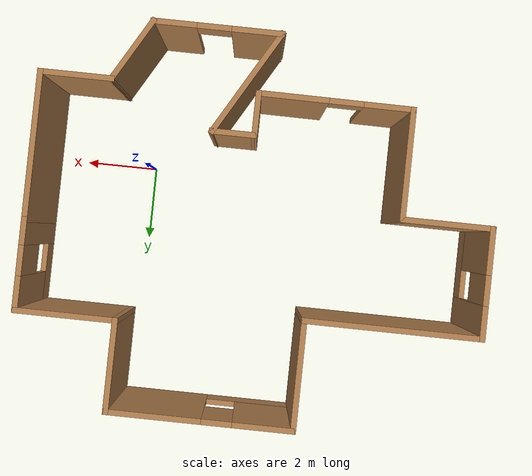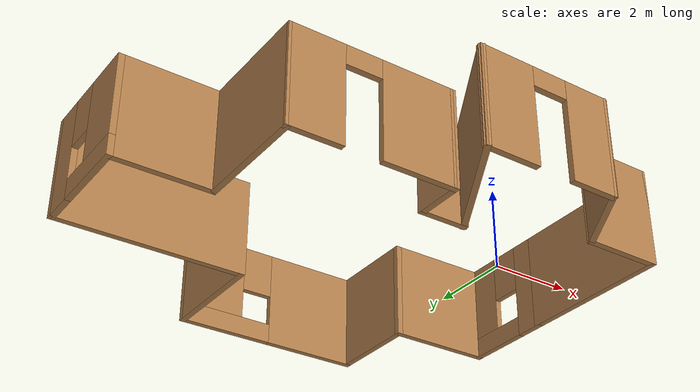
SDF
<?xml version='1.0'?>
<sdf version='1.6'>
  <model name='layout'>
    <pose frame=''>-3.17 1.42767 0 0 -0 0</pose>
    <link name='Wall_0'>
      <collision name='Wall_0_Collision'>
        <geometry>
          <box>
            <size>1.25 0.15 2.5</size>
          </box>
        </geometry>
        <pose frame=''>0 0 1.25 0 -0 0</pose>
      </collision>
      <visual name='Wall_0_Visual'>
        <pose frame=''>0 0 1.25 0 -0 0</pose>
        <geometry>
          <box>
            <size>1.25 0.15 2.5</size>
          </box>
        </geometry>
        <material>
          <script>
            <uri>file://media/materials/scripts/gazebo.material</uri>
            <name>Gazebo/Wood</name>
          </script>
          <ambient>1 1 1 1</ambient>
        </material>
        <meta>
          <layer>0</layer>
        </meta>
      </visual>
      <pose frame=''>0.35 -2.92767 0 0 -0 1.5708</pose>
    </link>
    <link name='Wall_1'>
      <collision name='Wall_1_Collision'>
        <geometry>
          <box>
            <size>1.25 0.15 2.5</size>
          </box>
        </geometry>
        <pose frame=''>0 0 1.25 0 -0 0</pose>
      </collision>
      <visual name='Wall_1_Visual'>
        <pose frame=''>0 0 1.25 0 -0 0</pose>
        <geometry>
          <box>
            <size>1.25 0.15 2.5</size>
          </box>
        </geometry>
        <material>
          <script>
            <uri>file://media/materials/scripts/gazebo.material</uri>
            <name>Gazebo/Wood</name>
          </script>
          <ambient>1 1 1 1</ambient>
        </material>
        <meta>
          <layer>0</layer>
        </meta>
      </visual>
      <pose frame=''>0.9 -2.37767 0 0 -0 0</pose>
    </link>
    <link name='Wall_10'>
      <pose frame=''>1 5.0898 0 0 -0 3.14159</pose>
      <visual name='Wall_10_Visual_0'>
        <pose frame=''>-1.22977 0 1.25 0 -0 0</pose>
        <geometry>
          <box>
            <size>2.54046 0.15 2.5</size>
          </box>
        </geometry>
        <material>
          <script>
            <uri>file://media/materials/scripts/gazebo.material</uri>
            <name>Gazebo/Wood</name>
          </script>
          <ambient>1 1 1 1</ambient>
        </material>
        <meta>
          <layer>0</layer>
        </meta>
      </visual>
      <collision name='Wall_10_Collision_0'>
        <geometry>
          <box>
            <size>2.54046 0.15 2.5</size>
          </box>
        </geometry>
        <pose frame=''>-1.22977 0 1.25 0 -0 0</pose>
      </collision>
      <visual name='Wall_10_Visual_1'>
        <pose frame=''>1.27023 0 0.25 0 -0 0</pose>
        <geometry>
          <box>
            <size>2.45954 0.15 0.5</size>
          </box>
        </geometry>
        <material>
          <script>
            <uri>file://media/materials/scripts/gazebo.material</uri>
            <name>Gazebo/Wood</name>
          </script>
          <ambient>1 1 1 1</ambient>
        </material>
        <meta>
          <layer>0</layer>
        </meta>
      </visual>
      <collision name='Wall_10_Collision_1'>
        <geometry>
          <box>
            <size>2.45954 0.15 0.5</size>
          </box>
        </geometry>
        <pose frame=''>1.27023 0 0.25 0 -0 0</pose>
      </collision>
      <visual name='Wall_10_Visual_2'>
        <pose frame=''>1.67023 0 1.5 0 -0 0</pose>
        <geometry>
          <box>
            <size>1.65954 0.15 2</size>
          </box>
        </geometry>
        <material>
          <script>
            <uri>file://media/materials/scripts/gazebo.material</uri>
            <name>Gazebo/Wood</name>
          </script>
          <ambient>1 1 1 1</ambient>
        </material>
        <meta>
          <layer>0</layer>
        </meta>
      </visual>
      <collision name='Wall_10_Collision_2'>
        <geometry>
          <box>
            <size>1.65954 0.15 2</size>
          </box>
        </geometry>
        <pose frame=''>1.67023 0 1.5 0 -0 0</pose>
      </collision>
      <visual name='Wall_10_Visual_3'>
        <pose frame=''>0.440464 0 1.9 0 -0 0</pose>
        <geometry>
          <box>
            <size>0.8 0.15 1.2</size>
          </box>
        </geometry>
        <material>
          <script>
            <uri>file://media/materials/scripts/gazebo.material</uri>
            <name>Gazebo/Wood</name>
          </script>
          <ambient>1 1 1 1</ambient>
        </material>
        <meta>
          <layer>0</layer>
        </meta>
      </visual>
      <collision name='Wall_10_Collision_3'>
        <geometry>
          <box>
            <size>0.8 0.15 1.2</size>
          </box>
        </geometry>
        <pose frame=''>0.440464 0 1.9 0 -0 0</pose>
      </collision>
    </link>
    <link name='Wall_11'>
      <collision name='Wall_11_Collision'>
        <geometry>
          <box>
            <size>3 0.15 2.5</size>
          </box>
        </geometry>
        <pose frame=''>0 0 1.25 0 -0 0</pose>
      </collision>
      <visual name='Wall_11_Visual'>
        <pose frame=''>0 0 1.25 0 -0 0</pose>
        <geometry>
          <box>
            <size>3 0.15 2.5</size>
          </box>
        </geometry>
        <material>
          <script>
            <uri>file://media/materials/scripts/gazebo.material</uri>
            <name>Gazebo/Wood</name>
          </script>
          <ambient>1 1 1 1</ambient>
        </material>
        <meta>
          <layer>0</layer>
        </meta>
      </visual>
      <pose frame=''>-1.425 3.6648 0 0 -0 -1.5708</pose>
    </link>
    <link name='Wall_12'>
      <collision name='Wall_12_Collision'>
        <geometry>
          <box>
            <size>4.75 0.15 2.5</size>
          </box>
        </geometry>
        <pose frame=''>0 0 1.25 0 -0 0</pose>
      </collision>
      <visual name='Wall_12_Visual'>
        <pose frame=''>0 0 1.25 0 -0 0</pose>
        <geometry>
          <box>
            <size>4.75 0.15 2.5</size>
          </box>
        </geometry>
        <material>
          <script>
            <uri>file://media/materials/scripts/gazebo.material</uri>
            <name>Gazebo/Wood</name>
          </script>
          <ambient>1 1 1 1</ambient>
        </material>
        <meta>
          <layer>0</layer>
        </meta>
      </visual>
      <pose frame=''>-3.725 2.2398 0 0 -0 3.14159</pose>
    </link>
    <link name='Wall_13'>
      <pose frame=''>-6.025 0.8148 0 0 -0 -1.5708</pose>
      <visual name='Wall_13_Visual_0'>
        <pose frame=''>-1.03684 0 1.25 0 -0 0</pose>
        <geometry>
          <box>
            <size>0.926313 0.15 2.5</size>
          </box>
        </geometry>
        <material>
          <script>
            <uri>file://media/materials/scripts/gazebo.material</uri>
            <name>Gazebo/Wood</name>
          </script>
          <ambient>1 1 1 1</ambient>
        </material>
        <meta>
          <layer>0</layer>
        </meta>
      </visual>
      <collision name='Wall_13_Collision_0'>
        <geometry>
          <box>
            <size>0.926313 0.15 2.5</size>
          </box>
        </geometry>
        <pose frame=''>-1.03684 0 1.25 0 -0 0</pose>
      </collision>
      <visual name='Wall_13_Visual_1'>
        <pose frame=''>0.463157 0 0.25 0 -0 0</pose>
        <geometry>
          <box>
            <size>2.07369 0.15 0.5</size>
          </box>
        </geometry>
        <material>
          <script>
            <uri>file://media/materials/scripts/gazebo.material</uri>
            <name>Gazebo/Wood</name>
          </script>
          <ambient>1 1 1 1</ambient>
        </material>
        <meta>
          <layer>0</layer>
        </meta>
      </visual>
      <collision name='Wall_13_Collision_1'>
        <geometry>
          <box>
            <size>2.07369 0.15 0.5</size>
          </box>
        </geometry>
        <pose frame=''>0.463157 0 0.25 0 -0 0</pose>
      </collision>
      <visual name='Wall_13_Visual_2'>
        <pose frame=''>0.863157 0 1.5 0 -0 0</pose>
        <geometry>
          <box>
            <size>1.27369 0.15 2</size>
          </box>
        </geometry>
        <material>
          <script>
            <uri>file://media/materials/scripts/gazebo.material</uri>
            <name>Gazebo/Wood</name>
          </script>
          <ambient>1 1 1 1</ambient>
        </material>
        <meta>
          <layer>0</layer>
        </meta>
      </visual>
      <collision name='Wall_13_Collision_2'>
        <geometry>
          <box>
            <size>1.27369 0.15 2</size>
          </box>
        </geometry>
        <pose frame=''>0.863157 0 1.5 0 -0 0</pose>
      </collision>
      <visual name='Wall_13_Visual_3'>
        <pose frame=''>-0.173687 0 1.9 0 -0 0</pose>
        <geometry>
          <box>
            <size>0.8 0.15 1.2</size>
          </box>
        </geometry>
        <material>
          <script>
            <uri>file://media/materials/scripts/gazebo.material</uri>
            <name>Gazebo/Wood</name>
          </script>
          <ambient>1 1 1 1</ambient>
        </material>
        <meta>
          <layer>0</layer>
        </meta>
      </visual>
      <collision name='Wall_13_Collision_3'>
        <geometry>
          <box>
            <size>0.8 0.15 1.2</size>
          </box>
        </geometry>
        <pose frame=''>-0.173687 0 1.9 0 -0 0</pose>
      </collision>
    </link>
    <link name='Wall_14'>
      <collision name='Wall_14_Collision'>
        <geometry>
          <box>
            <size>2.5 0.15 2.5</size>
          </box>
        </geometry>
        <pose frame=''>0 0 1.25 0 -0 0</pose>
      </collision>
      <visual name='Wall_14_Visual'>
        <pose frame=''>0 0 1.25 0 -0 0</pose>
        <geometry>
          <box>
            <size>2.5 0.15 2.5</size>
          </box>
        </geometry>
        <material>
          <script>
            <uri>file://media/materials/scripts/gazebo.material</uri>
            <name>Gazebo/Wood</name>
          </script>
          <ambient>1 1 1 1</ambient>
        </material>
        <meta>
          <layer>0</layer>
        </meta>
      </visual>
      <pose frame=''>-4.85 -0.610201 0 0 -0 0</pose>
    </link>
    <link name='Wall_15'>
      <collision name='Wall_15_Collision'>
        <geometry>
          <box>
            <size>3 0.15 2.5</size>
          </box>
        </geometry>
        <pose frame=''>0 0 1.25 0 -0 0</pose>
      </collision>
      <visual name='Wall_15_Visual'>
        <pose frame=''>0 0 1.25 0 -0 0</pose>
        <geometry>
          <box>
            <size>3 0.15 2.5</size>
          </box>
        </geometry>
        <material>
          <script>
            <uri>file://media/materials/scripts/gazebo.material</uri>
            <name>Gazebo/Wood</name>
          </script>
          <ambient>1 1 1 1</ambient>
        </material>
        <meta>
          <layer>0</layer>
        </meta>
      </visual>
      <pose frame=''>-3.675 -2.0352 0 0 -0 -1.5708</pose>
    </link>
    <link name='Wall_16'>
      <pose frame=''>-1.6625 -3.46894 0 0 -0 -0.00434</pose>
      <visual name='Wall_16_Visual_0'>
        <pose frame=''>-1.4045 0 1.25 0 -0 0</pose>
        <geometry>
          <box>
            <size>1.36604 0.15 2.5</size>
          </box>
        </geometry>
        <material>
          <script>
            <uri>file://media/materials/scripts/gazebo.material</uri>
            <name>Gazebo/Wood</name>
          </script>
          <ambient>1 1 1 1</ambient>
        </material>
        <meta>
          <layer>0</layer>
        </meta>
      </visual>
      <collision name='Wall_16_Collision_0'>
        <geometry>
          <box>
            <size>1.36604 0.15 2.5</size>
          </box>
        </geometry>
        <pose frame=''>-1.4045 0 1.25 0 -0 0</pose>
      </collision>
      <visual name='Wall_16_Visual_1'>
        <pose frame=''>1.13302 0 1.25 0 -0 0</pose>
        <geometry>
          <box>
            <size>1.909 0.15 2.5</size>
          </box>
        </geometry>
        <material>
          <script>
            <uri>file://media/materials/scripts/gazebo.material</uri>
            <name>Gazebo/Wood</name>
          </script>
          <ambient>1 1 1 1</ambient>
        </material>
        <meta>
          <layer>0</layer>
        </meta>
      </visual>
      <collision name='Wall_16_Collision_1'>
        <geometry>
          <box>
            <size>1.909 0.15 2.5</size>
          </box>
        </geometry>
        <pose frame=''>1.13302 0 1.25 0 -0 0</pose>
      </collision>
      <visual name='Wall_16_Visual_2'>
        <pose frame=''>-0.271478 0 2.25 0 -0 0</pose>
        <geometry>
          <box>
            <size>0.9 0.15 0.5</size>
          </box>
        </geometry>
        <material>
          <script>
            <uri>file://media/materials/scripts/gazebo.material</uri>
            <name>Gazebo/Wood</name>
          </script>
          <ambient>1 1 1 1</ambient>
        </material>
        <meta>
          <layer>0</layer>
        </meta>
      </visual>
      <collision name='Wall_16_Collision_2'>
        <geometry>
          <box>
            <size>0.9 0.15 0.5</size>
          </box>
        </geometry>
        <pose frame=''>-0.271478 0 2.25 0 -0 0</pose>
      </collision>
    </link>
    <link name='Wall_2'>
      <collision name='Wall_2_Collision'>
        <geometry>
          <box>
            <size>3.25 0.15 2.5</size>
          </box>
        </geometry>
        <pose frame=''>0 0 1.25 0 -0 0</pose>
      </collision>
      <visual name='Wall_2_Visual'>
        <pose frame=''>0 0 1.25 0 -0 0</pose>
        <geometry>
          <box>
            <size>3.25 0.15 2.5</size>
          </box>
        </geometry>
        <material>
          <script>
            <uri>file://media/materials/scripts/gazebo.material</uri>
            <name>Gazebo/Wood</name>
          </script>
          <ambient>1 1 1 1</ambient>
        </material>
        <meta>
          <layer>0</layer>
        </meta>
      </visual>
      <pose frame=''>0.675 -3.72001 0 0 -0 -2.0944</pose>
    </link>
    <link name='Wall_3'>
      <pose frame=''>1.575 -5.06235 0 0 -0 0</pose>
      <visual name='Wall_3_Visual_0'>
        <pose frame=''>-1.05436 0 1.25 0 -0 0</pose>
        <geometry>
          <box>
            <size>1.39127 0.15 2.5</size>
          </box>
        </geometry>
        <material>
          <script>
            <uri>file://media/materials/scripts/gazebo.material</uri>
            <name>Gazebo/Wood</name>
          </script>
          <ambient>1 1 1 1</ambient>
        </material>
        <meta>
          <layer>0</layer>
        </meta>
      </visual>
      <collision name='Wall_3_Collision_0'>
        <geometry>
          <box>
            <size>1.39127 0.15 2.5</size>
          </box>
        </geometry>
        <pose frame=''>-1.05436 0 1.25 0 -0 0</pose>
      </collision>
      <visual name='Wall_3_Visual_1'>
        <pose frame=''>1.14563 0 1.25 0 -0 0</pose>
        <geometry>
          <box>
            <size>1.20873 0.15 2.5</size>
          </box>
        </geometry>
        <material>
          <script>
            <uri>file://media/materials/scripts/gazebo.material</uri>
            <name>Gazebo/Wood</name>
          </script>
          <ambient>1 1 1 1</ambient>
        </material>
        <meta>
          <layer>0</layer>
        </meta>
      </visual>
      <collision name='Wall_3_Collision_1'>
        <geometry>
          <box>
            <size>1.20873 0.15 2.5</size>
          </box>
        </geometry>
        <pose frame=''>1.14563 0 1.25 0 -0 0</pose>
      </collision>
      <visual name='Wall_3_Visual_2'>
        <pose frame=''>0.091271 0 2.25 0 -0 0</pose>
        <geometry>
          <box>
            <size>0.9 0.15 0.5</size>
          </box>
        </geometry>
        <material>
          <script>
            <uri>file://media/materials/scripts/gazebo.material</uri>
            <name>Gazebo/Wood</name>
          </script>
          <ambient>1 1 1 1</ambient>
        </material>
        <meta>
          <layer>0</layer>
        </meta>
      </visual>
      <collision name='Wall_3_Collision_2'>
        <geometry>
          <box>
            <size>0.9 0.15 0.5</size>
          </box>
        </geometry>
        <pose frame=''>0.091271 0 2.25 0 -0 0</pose>
      </collision>
    </link>
    <link name='Wall_4'>
      <collision name='Wall_4_Collision'>
        <geometry>
          <box>
            <size>2 0.15 2.5</size>
          </box>
        </geometry>
        <pose frame=''>0 0 1.25 0 -0 0</pose>
      </collision>
      <visual name='Wall_4_Visual'>
        <pose frame=''>0 0 1.25 0 -0 0</pose>
        <geometry>
          <box>
            <size>2 0.15 2.5</size>
          </box>
        </geometry>
        <material>
          <script>
            <uri>file://media/materials/scripts/gazebo.material</uri>
            <name>Gazebo/Wood</name>
          </script>
          <ambient>1 1 1 1</ambient>
        </material>
        <meta>
          <layer>0</layer>
        </meta>
      </visual>
      <pose frame=''>3.7125 -4.26127 0 0 -0 1.0472</pose>
    </link>
    <link name='Wall_5'>
      <collision name='Wall_5_Collision'>
        <geometry>
          <box>
            <size>2 0.15 2.5</size>
          </box>
        </geometry>
        <pose frame=''>0 0 1.25 0 -0 0</pose>
      </collision>
      <visual name='Wall_5_Visual'>
        <pose frame=''>0 0 1.25 0 -0 0</pose>
        <geometry>
          <box>
            <size>2 0.15 2.5</size>
          </box>
        </geometry>
        <material>
          <script>
            <uri>file://media/materials/scripts/gazebo.material</uri>
            <name>Gazebo/Wood</name>
          </script>
          <ambient>1 1 1 1</ambient>
        </material>
        <meta>
          <layer>0</layer>
        </meta>
      </visual>
      <pose frame=''>5.1 -3.4602 0 0 -0 0</pose>
    </link>
    <link name='Wall_6'>
      <collision name='Wall_6_Collision'>
        <geometry>
          <box>
            <size>4 0.15 2.5</size>
          </box>
        </geometry>
        <pose frame=''>0 0 1.25 0 -0 0</pose>
      </collision>
      <visual name='Wall_6_Visual'>
        <pose frame=''>0 0 1.25 0 -0 0</pose>
        <geometry>
          <box>
            <size>4 0.15 2.5</size>
          </box>
        </geometry>
        <material>
          <script>
            <uri>file://media/materials/scripts/gazebo.material</uri>
            <name>Gazebo/Wood</name>
          </script>
          <ambient>1 1 1 1</ambient>
        </material>
        <meta>
          <layer>0</layer>
        </meta>
      </visual>
      <pose frame=''>6.025 -1.5352 0 0 -0 1.5708</pose>
    </link>
    <link name='Wall_7'>
      <pose frame=''>6.025 1.5648 0 0 -0 1.5708</pose>
      <visual name='Wall_7_Visual_0'>
        <pose frame=''>-0.880537 0 1.25 0 -0 0</pose>
        <geometry>
          <box>
            <size>0.738926 0.15 2.5</size>
          </box>
        </geometry>
        <material>
          <script>
            <uri>file://media/materials/scripts/gazebo.material</uri>
            <name>Gazebo/Wood</name>
          </script>
          <ambient>1 1 1 1</ambient>
        </material>
        <meta>
          <layer>0</layer>
        </meta>
      </visual>
      <collision name='Wall_7_Collision_0'>
        <geometry>
          <box>
            <size>0.738926 0.15 2.5</size>
          </box>
        </geometry>
        <pose frame=''>-0.880537 0 1.25 0 -0 0</pose>
      </collision>
      <visual name='Wall_7_Visual_1'>
        <pose frame=''>0.369463 0 0.25 0 -0 0</pose>
        <geometry>
          <box>
            <size>1.76107 0.15 0.5</size>
          </box>
        </geometry>
        <material>
          <script>
            <uri>file://media/materials/scripts/gazebo.material</uri>
            <name>Gazebo/Wood</name>
          </script>
          <ambient>1 1 1 1</ambient>
        </material>
        <meta>
          <layer>0</layer>
        </meta>
      </visual>
      <collision name='Wall_7_Collision_1'>
        <geometry>
          <box>
            <size>1.76107 0.15 0.5</size>
          </box>
        </geometry>
        <pose frame=''>0.369463 0 0.25 0 -0 0</pose>
      </collision>
      <visual name='Wall_7_Visual_2'>
        <pose frame=''>0.769463 0 1.5 0 -0 0</pose>
        <geometry>
          <box>
            <size>0.961074 0.15 2</size>
          </box>
        </geometry>
        <material>
          <script>
            <uri>file://media/materials/scripts/gazebo.material</uri>
            <name>Gazebo/Wood</name>
          </script>
          <ambient>1 1 1 1</ambient>
        </material>
        <meta>
          <layer>0</layer>
        </meta>
      </visual>
      <collision name='Wall_7_Collision_2'>
        <geometry>
          <box>
            <size>0.961074 0.15 2</size>
          </box>
        </geometry>
        <pose frame=''>0.769463 0 1.5 0 -0 0</pose>
      </collision>
      <visual name='Wall_7_Visual_3'>
        <pose frame=''>-0.111074 0 1.9 0 -0 0</pose>
        <geometry>
          <box>
            <size>0.8 0.15 1.2</size>
          </box>
        </geometry>
        <material>
          <script>
            <uri>file://media/materials/scripts/gazebo.material</uri>
            <name>Gazebo/Wood</name>
          </script>
          <ambient>1 1 1 1</ambient>
        </material>
        <meta>
          <layer>0</layer>
        </meta>
      </visual>
      <collision name='Wall_7_Collision_3'>
        <geometry>
          <box>
            <size>0.8 0.15 1.2</size>
          </box>
        </geometry>
        <pose frame=''>-0.111074 0 1.9 0 -0 0</pose>
      </collision>
    </link>
    <link name='Wall_8'>
      <collision name='Wall_8_Collision'>
        <geometry>
          <box>
            <size>2.75 0.15 2.5</size>
          </box>
        </geometry>
        <pose frame=''>0 0 1.25 0 -0 0</pose>
      </collision>
      <visual name='Wall_8_Visual'>
        <pose frame=''>0 0 1.25 0 -0 0</pose>
        <geometry>
          <box>
            <size>2.75 0.15 2.5</size>
          </box>
        </geometry>
        <material>
          <script>
            <uri>file://media/materials/scripts/gazebo.material</uri>
            <name>Gazebo/Wood</name>
          </script>
          <ambient>1 1 1 1</ambient>
        </material>
        <meta>
          <layer>0</layer>
        </meta>
      </visual>
      <pose frame=''>4.725 2.7398 0 0 -0 3.14159</pose>
    </link>
    <link name='Wall_9'>
      <collision name='Wall_9_Collision'>
        <geometry>
          <box>
            <size>2.5 0.15 2.5</size>
          </box>
        </geometry>
        <pose frame=''>0 0 1.25 0 -0 0</pose>
      </collision>
      <visual name='Wall_9_Visual'>
        <pose frame=''>0 0 1.25 0 -0 0</pose>
        <geometry>
          <box>
            <size>2.5 0.15 2.5</size>
          </box>
        </geometry>
        <material>
          <script>
            <uri>file://media/materials/scripts/gazebo.material</uri>
            <name>Gazebo/Wood</name>
          </script>
          <ambient>1 1 1 1</ambient>
        </material>
        <meta>
          <layer>0</layer>
        </meta>
      </visual>
      <pose frame=''>3.425 3.9148 0 0 -0 1.5708</pose>
    </link>
    <static>1</static>
  </model>
</sdf>
